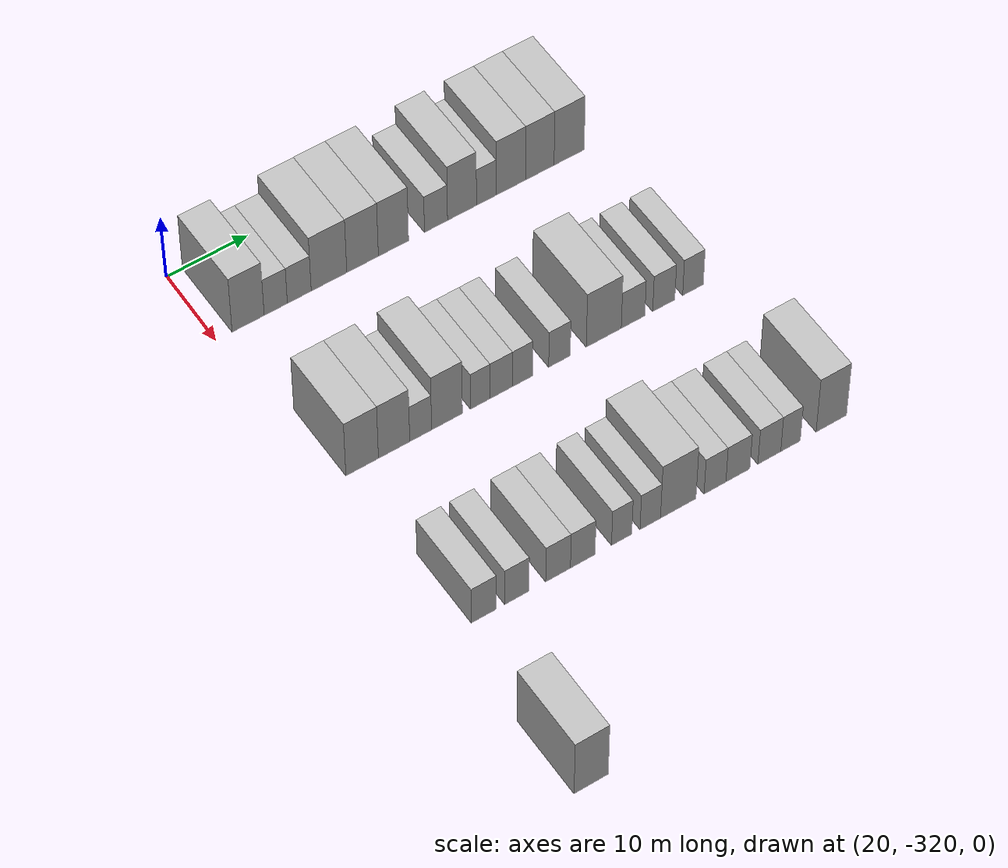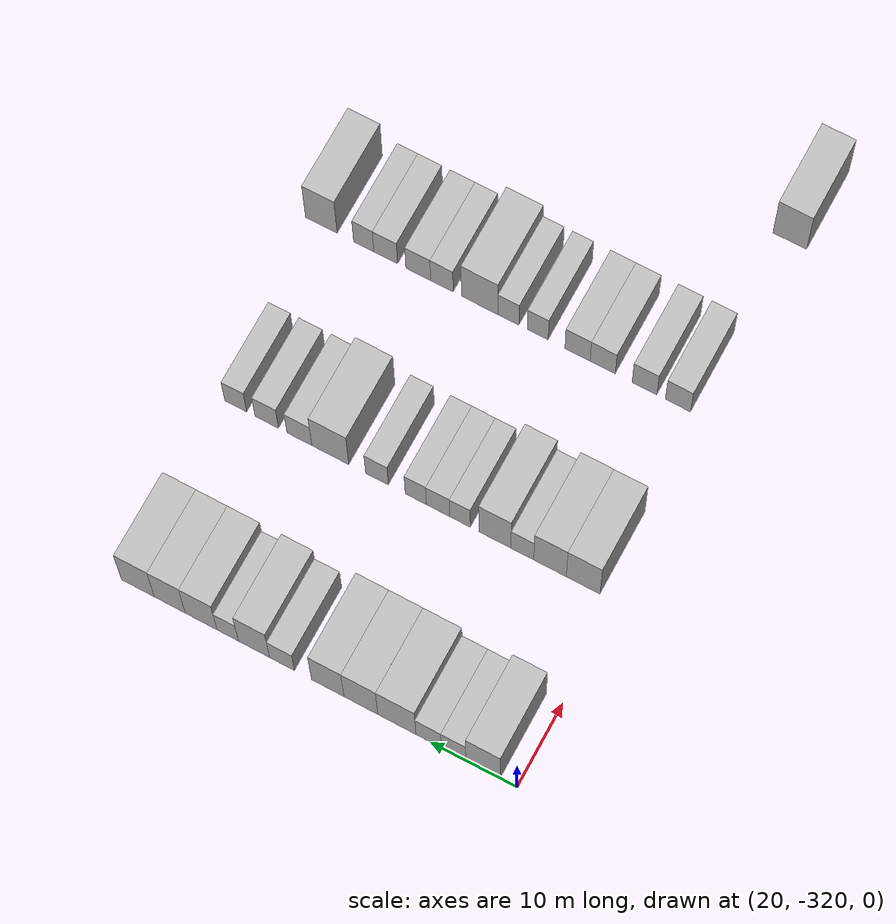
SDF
<sdf version="1.6">
 <world name="default">
  <model name="building_12">
   <static>1</static>
   <pose>25.0000 -316.0874 0 0.000000 0.000000 0.000000</pose>
   <link name="link">
    <pose>0 0 4.50 0 0 0</pose>
    <collision name="collision"><geometry><box><size>10.0000 3.9354 9.0000</size></box></geometry></collision>
    <visual name="visual">
     <cast_shadows>0</cast_shadows>
     <geometry><box><size>10.0000 3.9354 9.0000</size></box></geometry>
     <material>
      <script>
       <uri>model://HANNAS_wall/materials/scripts</uri>
       <uri>model://HANNAS_wall/materials/textures</uri>
       <name>vrc/HANNAS_wall</name>
      </script>
     </material>
    </visual>
   </link>
  </model>
  <model name="building_13">
   <static>1</static>
   <pose>25.0000 -312.6934 0 0.000000 0.000000 0.000000</pose>
   <link name="link">
    <pose>0 0 3.00 0 0 0</pose>
    <collision name="collision"><geometry><box><size>10.0000 2.8527 6.0000</size></box></geometry></collision>
    <visual name="visual">
     <cast_shadows>0</cast_shadows>
     <geometry><box><size>10.0000 2.8527 6.0000</size></box></geometry>
     <material>
      <script>
       <uri>model://HANNAS_wall/materials/scripts</uri>
       <uri>model://HANNAS_wall/materials/textures</uri>
       <name>vrc/HANNAS_wall</name>
      </script>
     </material>
    </visual>
   </link>
  </model>
  <model name="building_14">
   <static>1</static>
   <pose>25.0000 -309.7928 0 0.000000 0.000000 0.000000</pose>
   <link name="link">
    <pose>0 0 3.00 0 0 0</pose>
    <collision name="collision"><geometry><box><size>10.0000 2.9486 6.0000</size></box></geometry></collision>
    <visual name="visual">
     <cast_shadows>0</cast_shadows>
     <geometry><box><size>10.0000 2.9486 6.0000</size></box></geometry>
     <material>
      <script>
       <uri>model://HANNAS_wall/materials/scripts</uri>
       <uri>model://HANNAS_wall/materials/textures</uri>
       <name>vrc/HANNAS_wall</name>
      </script>
     </material>
    </visual>
   </link>
  </model>
  <model name="building_15">
   <static>1</static>
   <pose>25.0000 -306.1103 0 0.000000 0.000000 0.000000</pose>
   <link name="link">
    <pose>0 0 4.50 0 0 0</pose>
    <collision name="collision"><geometry><box><size>10.0000 4.4164 9.0000</size></box></geometry></collision>
    <visual name="visual">
     <cast_shadows>0</cast_shadows>
     <geometry><box><size>10.0000 4.4164 9.0000</size></box></geometry>
     <material>
      <script>
       <uri>model://HANNAS_wall/materials/scripts</uri>
       <uri>model://HANNAS_wall/materials/textures</uri>
       <name>vrc/HANNAS_wall</name>
      </script>
     </material>
    </visual>
   </link>
  </model>
  <model name="building_16">
   <static>1</static>
   <pose>25.0000 -301.9288 0 0.000000 0.000000 0.000000</pose>
   <link name="link">
    <pose>0 0 4.50 0 0 0</pose>
    <collision name="collision"><geometry><box><size>10.0000 3.9465 9.0000</size></box></geometry></collision>
    <visual name="visual">
     <cast_shadows>0</cast_shadows>
     <geometry><box><size>10.0000 3.9465 9.0000</size></box></geometry>
     <material>
      <script>
       <uri>model://HANNAS_wall/materials/scripts</uri>
       <uri>model://HANNAS_wall/materials/textures</uri>
       <name>vrc/HANNAS_wall</name>
      </script>
     </material>
    </visual>
   </link>
  </model>
  <model name="building_17">
   <static>1</static>
   <pose>25.0000 -298.0596 0 0.000000 0.000000 0.000000</pose>
   <link name="link">
    <pose>0 0 4.50 0 0 0</pose>
    <collision name="collision"><geometry><box><size>10.0000 3.7918 9.0000</size></box></geometry></collision>
    <visual name="visual">
     <cast_shadows>0</cast_shadows>
     <geometry><box><size>10.0000 3.7918 9.0000</size></box></geometry>
     <material>
      <script>
       <uri>model://HANNAS_wall/materials/scripts</uri>
       <uri>model://HANNAS_wall/materials/textures</uri>
       <name>vrc/HANNAS_wall</name>
      </script>
     </material>
    </visual>
   </link>
  </model>
  <model name="building_18">
   <static>1</static>
   <pose>25.0000 -292.7049 0 0.000000 0.000000 0.000000</pose>
   <link name="link">
    <pose>0 0 3.00 0 0 0</pose>
    <collision name="collision"><geometry><box><size>10.0000 2.9178 6.0000</size></box></geometry></collision>
    <visual name="visual">
     <cast_shadows>0</cast_shadows>
     <geometry><box><size>10.0000 2.9178 6.0000</size></box></geometry>
     <material>
      <script>
       <uri>model://HANNAS_wall/materials/scripts</uri>
       <uri>model://HANNAS_wall/materials/textures</uri>
       <name>vrc/HANNAS_wall</name>
      </script>
     </material>
    </visual>
   </link>
  </model>
  <model name="building_19">
   <static>1</static>
   <pose>25.0000 -289.4056 0 0.000000 0.000000 0.000000</pose>
   <link name="link">
    <pose>0 0 4.50 0 0 0</pose>
    <collision name="collision"><geometry><box><size>10.0000 3.6808 9.0000</size></box></geometry></collision>
    <visual name="visual">
     <cast_shadows>0</cast_shadows>
     <geometry><box><size>10.0000 3.6808 9.0000</size></box></geometry>
     <material>
      <script>
       <uri>model://HANNAS_wall/materials/scripts</uri>
       <uri>model://HANNAS_wall/materials/textures</uri>
       <name>vrc/HANNAS_wall</name>
      </script>
     </material>
    </visual>
   </link>
  </model>
  <model name="building_20">
   <static>1</static>
   <pose>25.0000 -286.3072 0 0.000000 0.000000 0.000000</pose>
   <link name="link">
    <pose>0 0 3.00 0 0 0</pose>
    <collision name="collision"><geometry><box><size>10.0000 2.5159 6.0000</size></box></geometry></collision>
    <visual name="visual">
     <cast_shadows>0</cast_shadows>
     <geometry><box><size>10.0000 2.5159 6.0000</size></box></geometry>
     <material>
      <script>
       <uri>model://HANNAS_wall/materials/scripts</uri>
       <uri>model://HANNAS_wall/materials/textures</uri>
       <name>vrc/HANNAS_wall</name>
      </script>
     </material>
    </visual>
   </link>
  </model>
  <model name="building_21">
   <static>1</static>
   <pose>25.0000 -283.1710 0 0.000000 0.000000 0.000000</pose>
   <link name="link">
    <pose>0 0 4.50 0 0 0</pose>
    <collision name="collision"><geometry><box><size>10.0000 3.7564 9.0000</size></box></geometry></collision>
    <visual name="visual">
     <cast_shadows>0</cast_shadows>
     <geometry><box><size>10.0000 3.7564 9.0000</size></box></geometry>
     <material>
      <script>
       <uri>model://HANNAS_wall/materials/scripts</uri>
       <uri>model://HANNAS_wall/materials/textures</uri>
       <name>vrc/HANNAS_wall</name>
      </script>
     </material>
    </visual>
   </link>
  </model>
  <model name="building_22">
   <static>1</static>
   <pose>25.0000 -279.4564 0 0.000000 0.000000 0.000000</pose>
   <link name="link">
    <pose>0 0 4.50 0 0 0</pose>
    <collision name="collision"><geometry><box><size>10.0000 3.6729 9.0000</size></box></geometry></collision>
    <visual name="visual">
     <cast_shadows>0</cast_shadows>
     <geometry><box><size>10.0000 3.6729 9.0000</size></box></geometry>
     <material>
      <script>
       <uri>model://HANNAS_wall/materials/scripts</uri>
       <uri>model://HANNAS_wall/materials/textures</uri>
       <name>vrc/HANNAS_wall</name>
      </script>
     </material>
    </visual>
   </link>
  </model>
  <model name="building_23">
   <static>1</static>
   <pose>25.0000 -275.6737 0 0.000000 0.000000 0.000000</pose>
   <link name="link">
    <pose>0 0 4.50 0 0 0</pose>
    <collision name="collision"><geometry><box><size>10.0000 3.8923 9.0000</size></box></geometry></collision>
    <visual name="visual">
     <cast_shadows>0</cast_shadows>
     <geometry><box><size>10.0000 3.8923 9.0000</size></box></geometry>
     <material>
      <script>
       <uri>model://HANNAS_wall/materials/scripts</uri>
       <uri>model://HANNAS_wall/materials/textures</uri>
       <name>vrc/HANNAS_wall</name>
      </script>
     </material>
    </visual>
   </link>
  </model>
  <model name="building_199">
   <static>1</static>
   <pose>47.0000 -315.9801 0 0.000000 0.000000 0.000000</pose>
   <link name="link">
    <pose>0 0 4.50 0 0 0</pose>
    <collision name="collision"><geometry><box><size>10.0000 3.9412 9.0000</size></box></geometry></collision>
    <visual name="visual">
     <cast_shadows>0</cast_shadows>
     <geometry><box><size>10.0000 3.9412 9.0000</size></box></geometry>
     <material>
      <script>
       <uri>model://HANNAS_wall/materials/scripts</uri>
       <uri>model://HANNAS_wall/materials/textures</uri>
       <name>vrc/HANNAS_wall</name>
      </script>
     </material>
    </visual>
   </link>
  </model>
  <model name="building_200">
   <static>1</static>
   <pose>47.0000 -312.1093 0 0.000000 0.000000 0.000000</pose>
   <link name="link">
    <pose>0 0 4.50 0 0 0</pose>
    <collision name="collision"><geometry><box><size>10.0000 3.8005 9.0000</size></box></geometry></collision>
    <visual name="visual">
     <cast_shadows>0</cast_shadows>
     <geometry><box><size>10.0000 3.8005 9.0000</size></box></geometry>
     <material>
      <script>
       <uri>model://HANNAS_wall/materials/scripts</uri>
       <uri>model://HANNAS_wall/materials/textures</uri>
       <name>vrc/HANNAS_wall</name>
      </script>
     </material>
    </visual>
   </link>
  </model>
  <model name="building_201">
   <static>1</static>
   <pose>47.0000 -308.8733 0 0.000000 0.000000 0.000000</pose>
   <link name="link">
    <pose>0 0 3.00 0 0 0</pose>
    <collision name="collision"><geometry><box><size>10.0000 2.6715 6.0000</size></box></geometry></collision>
    <visual name="visual">
     <cast_shadows>0</cast_shadows>
     <geometry><box><size>10.0000 2.6715 6.0000</size></box></geometry>
     <material>
      <script>
       <uri>model://HANNAS_wall/materials/scripts</uri>
       <uri>model://HANNAS_wall/materials/textures</uri>
       <name>vrc/HANNAS_wall</name>
      </script>
     </material>
    </visual>
   </link>
  </model>
  <model name="building_202">
   <static>1</static>
   <pose>47.0000 -305.6517 0 0.000000 0.000000 0.000000</pose>
   <link name="link">
    <pose>0 0 4.50 0 0 0</pose>
    <collision name="collision"><geometry><box><size>10.0000 3.7718 9.0000</size></box></geometry></collision>
    <visual name="visual">
     <cast_shadows>0</cast_shadows>
     <geometry><box><size>10.0000 3.7718 9.0000</size></box></geometry>
     <material>
      <script>
       <uri>model://HANNAS_wall/materials/scripts</uri>
       <uri>model://HANNAS_wall/materials/textures</uri>
       <name>vrc/HANNAS_wall</name>
      </script>
     </material>
    </visual>
   </link>
  </model>
  <model name="building_203">
   <static>1</static>
   <pose>47.0000 -301.5495 0 0.000000 0.000000 0.000000</pose>
   <link name="link">
    <pose>0 0 3.00 0 0 0</pose>
    <collision name="collision"><geometry><box><size>10.0000 2.4326 6.0000</size></box></geometry></collision>
    <visual name="visual">
     <cast_shadows>0</cast_shadows>
     <geometry><box><size>10.0000 2.4326 6.0000</size></box></geometry>
     <material>
      <script>
       <uri>model://HANNAS_wall/materials/scripts</uri>
       <uri>model://HANNAS_wall/materials/textures</uri>
       <name>vrc/HANNAS_wall</name>
      </script>
     </material>
    </visual>
   </link>
  </model>
  <model name="building_204">
   <static>1</static>
   <pose>47.0000 -298.9523 0 0.000000 0.000000 0.000000</pose>
   <link name="link">
    <pose>0 0 3.00 0 0 0</pose>
    <collision name="collision"><geometry><box><size>10.0000 2.7617 6.0000</size></box></geometry></collision>
    <visual name="visual">
     <cast_shadows>0</cast_shadows>
     <geometry><box><size>10.0000 2.7617 6.0000</size></box></geometry>
     <material>
      <script>
       <uri>model://HANNAS_wall/materials/scripts</uri>
       <uri>model://HANNAS_wall/materials/textures</uri>
       <name>vrc/HANNAS_wall</name>
      </script>
     </material>
    </visual>
   </link>
  </model>
  <model name="building_205">
   <static>1</static>
   <pose>47.0000 -296.3221 0 0.000000 0.000000 0.000000</pose>
   <link name="link">
    <pose>0 0 3.00 0 0 0</pose>
    <collision name="collision"><geometry><box><size>10.0000 2.4988 6.0000</size></box></geometry></collision>
    <visual name="visual">
     <cast_shadows>0</cast_shadows>
     <geometry><box><size>10.0000 2.4988 6.0000</size></box></geometry>
     <material>
      <script>
       <uri>model://HANNAS_wall/materials/scripts</uri>
       <uri>model://HANNAS_wall/materials/textures</uri>
       <name>vrc/HANNAS_wall</name>
      </script>
     </material>
    </visual>
   </link>
  </model>
  <model name="building_206">
   <static>1</static>
   <pose>47.0000 -291.7215 0 0.000000 0.000000 0.000000</pose>
   <link name="link">
    <pose>0 0 3.00 0 0 0</pose>
    <collision name="collision"><geometry><box><size>10.0000 2.7024 6.0000</size></box></geometry></collision>
    <visual name="visual">
     <cast_shadows>0</cast_shadows>
     <geometry><box><size>10.0000 2.7024 6.0000</size></box></geometry>
     <material>
      <script>
       <uri>model://HANNAS_wall/materials/scripts</uri>
       <uri>model://HANNAS_wall/materials/textures</uri>
       <name>vrc/HANNAS_wall</name>
      </script>
     </material>
    </visual>
   </link>
  </model>
  <model name="building_207">
   <static>1</static>
   <pose>47.0000 -286.1635 0 0.000000 0.000000 0.000000</pose>
   <link name="link">
    <pose>0 0 4.50 0 0 0</pose>
    <collision name="collision"><geometry><box><size>10.0000 4.4135 9.0000</size></box></geometry></collision>
    <visual name="visual">
     <cast_shadows>0</cast_shadows>
     <geometry><box><size>10.0000 4.4135 9.0000</size></box></geometry>
     <material>
      <script>
       <uri>model://HANNAS_wall/materials/scripts</uri>
       <uri>model://HANNAS_wall/materials/textures</uri>
       <name>vrc/HANNAS_wall</name>
      </script>
     </material>
    </visual>
   </link>
  </model>
  <model name="building_208">
   <static>1</static>
   <pose>47.0000 -282.4631 0 0.000000 0.000000 0.000000</pose>
   <link name="link">
    <pose>0 0 3.00 0 0 0</pose>
    <collision name="collision"><geometry><box><size>10.0000 2.9874 6.0000</size></box></geometry></collision>
    <visual name="visual">
     <cast_shadows>0</cast_shadows>
     <geometry><box><size>10.0000 2.9874 6.0000</size></box></geometry>
     <material>
      <script>
       <uri>model://HANNAS_wall/materials/scripts</uri>
       <uri>model://HANNAS_wall/materials/textures</uri>
       <name>vrc/HANNAS_wall</name>
      </script>
     </material>
    </visual>
   </link>
  </model>
  <model name="building_209">
   <static>1</static>
   <pose>47.0000 -278.5616 0 0.000000 0.000000 0.000000</pose>
   <link name="link">
    <pose>0 0 3.00 0 0 0</pose>
    <collision name="collision"><geometry><box><size>10.0000 2.8155 6.0000</size></box></geometry></collision>
    <visual name="visual">
     <cast_shadows>0</cast_shadows>
     <geometry><box><size>10.0000 2.8155 6.0000</size></box></geometry>
     <material>
      <script>
       <uri>model://HANNAS_wall/materials/scripts</uri>
       <uri>model://HANNAS_wall/materials/textures</uri>
       <name>vrc/HANNAS_wall</name>
      </script>
     </material>
    </visual>
   </link>
  </model>
  <model name="building_210">
   <static>1</static>
   <pose>47.0000 -274.8339 0 0.000000 0.000000 0.000000</pose>
   <link name="link">
    <pose>0 0 3.00 0 0 0</pose>
    <collision name="collision"><geometry><box><size>10.0000 2.6399 6.0000</size></box></geometry></collision>
    <visual name="visual">
     <cast_shadows>0</cast_shadows>
     <geometry><box><size>10.0000 2.6399 6.0000</size></box></geometry>
     <material>
      <script>
       <uri>model://HANNAS_wall/materials/scripts</uri>
       <uri>model://HANNAS_wall/materials/textures</uri>
       <name>vrc/HANNAS_wall</name>
      </script>
     </material>
    </visual>
   </link>
  </model>
  <model name="building_383">
   <static>1</static>
   <pose>69.0000 -315.6085 0 0.000000 0.000000 0.000000</pose>
   <link name="link">
    <pose>0 0 3.00 0 0 0</pose>
    <collision name="collision"><geometry><box><size>10.0000 2.9805 6.0000</size></box></geometry></collision>
    <visual name="visual">
     <cast_shadows>0</cast_shadows>
     <geometry><box><size>10.0000 2.9805 6.0000</size></box></geometry>
     <material>
      <script>
       <uri>model://HANNAS_wall/materials/scripts</uri>
       <uri>model://HANNAS_wall/materials/textures</uri>
       <name>vrc/HANNAS_wall</name>
      </script>
     </material>
    </visual>
   </link>
  </model>
  <model name="building_384">
   <static>1</static>
   <pose>69.0000 -311.6565 0 0.000000 0.000000 0.000000</pose>
   <link name="link">
    <pose>0 0 3.00 0 0 0</pose>
    <collision name="collision"><geometry><box><size>10.0000 2.9236 6.0000</size></box></geometry></collision>
    <visual name="visual">
     <cast_shadows>0</cast_shadows>
     <geometry><box><size>10.0000 2.9236 6.0000</size></box></geometry>
     <material>
      <script>
       <uri>model://HANNAS_wall/materials/scripts</uri>
       <uri>model://HANNAS_wall/materials/textures</uri>
       <name>vrc/HANNAS_wall</name>
      </script>
     </material>
    </visual>
   </link>
  </model>
  <model name="building_385">
   <static>1</static>
   <pose>69.0000 -306.6961 0 0.000000 0.000000 0.000000</pose>
   <link name="link">
    <pose>0 0 3.00 0 0 0</pose>
    <collision name="collision"><geometry><box><size>10.0000 2.9971 6.0000</size></box></geometry></collision>
    <visual name="visual">
     <cast_shadows>0</cast_shadows>
     <geometry><box><size>10.0000 2.9971 6.0000</size></box></geometry>
     <material>
      <script>
       <uri>model://HANNAS_wall/materials/scripts</uri>
       <uri>model://HANNAS_wall/materials/textures</uri>
       <name>vrc/HANNAS_wall</name>
      </script>
     </material>
    </visual>
   </link>
  </model>
  <model name="building_386">
   <static>1</static>
   <pose>69.0000 -303.7032 0 0.000000 0.000000 0.000000</pose>
   <link name="link">
    <pose>0 0 3.00 0 0 0</pose>
    <collision name="collision"><geometry><box><size>10.0000 2.9887 6.0000</size></box></geometry></collision>
    <visual name="visual">
     <cast_shadows>0</cast_shadows>
     <geometry><box><size>10.0000 2.9887 6.0000</size></box></geometry>
     <material>
      <script>
       <uri>model://HANNAS_wall/materials/scripts</uri>
       <uri>model://HANNAS_wall/materials/textures</uri>
       <name>vrc/HANNAS_wall</name>
      </script>
     </material>
    </visual>
   </link>
  </model>
  <model name="building_387">
   <static>1</static>
   <pose>69.0000 -298.9659 0 0.000000 0.000000 0.000000</pose>
   <link name="link">
    <pose>0 0 3.00 0 0 0</pose>
    <collision name="collision"><geometry><box><size>10.0000 2.4860 6.0000</size></box></geometry></collision>
    <visual name="visual">
     <cast_shadows>0</cast_shadows>
     <geometry><box><size>10.0000 2.4860 6.0000</size></box></geometry>
     <material>
      <script>
       <uri>model://HANNAS_wall/materials/scripts</uri>
       <uri>model://HANNAS_wall/materials/textures</uri>
       <name>vrc/HANNAS_wall</name>
      </script>
     </material>
    </visual>
   </link>
  </model>
  <model name="building_388">
   <static>1</static>
   <pose>69.0000 -295.4655 0 0.000000 0.000000 0.000000</pose>
   <link name="link">
    <pose>0 0 3.00 0 0 0</pose>
    <collision name="collision"><geometry><box><size>10.0000 2.5148 6.0000</size></box></geometry></collision>
    <visual name="visual">
     <cast_shadows>0</cast_shadows>
     <geometry><box><size>10.0000 2.5148 6.0000</size></box></geometry>
     <material>
      <script>
       <uri>model://HANNAS_wall/materials/scripts</uri>
       <uri>model://HANNAS_wall/materials/textures</uri>
       <name>vrc/HANNAS_wall</name>
      </script>
     </material>
    </visual>
   </link>
  </model>
  <model name="building_389">
   <static>1</static>
   <pose>69.0000 -292.0192 0 0.000000 0.000000 0.000000</pose>
   <link name="link">
    <pose>0 0 4.50 0 0 0</pose>
    <collision name="collision"><geometry><box><size>10.0000 4.3778 9.0000</size></box></geometry></collision>
    <visual name="visual">
     <cast_shadows>0</cast_shadows>
     <geometry><box><size>10.0000 4.3778 9.0000</size></box></geometry>
     <material>
      <script>
       <uri>model://HANNAS_wall/materials/scripts</uri>
       <uri>model://HANNAS_wall/materials/textures</uri>
       <name>vrc/HANNAS_wall</name>
      </script>
     </material>
    </visual>
   </link>
  </model>
  <model name="building_390">
   <static>1</static>
   <pose>69.0000 -287.4700 0 0.000000 0.000000 0.000000</pose>
   <link name="link">
    <pose>0 0 3.00 0 0 0</pose>
    <collision name="collision"><geometry><box><size>10.0000 2.7206 6.0000</size></box></geometry></collision>
    <visual name="visual">
     <cast_shadows>0</cast_shadows>
     <geometry><box><size>10.0000 2.7206 6.0000</size></box></geometry>
     <material>
      <script>
       <uri>model://HANNAS_wall/materials/scripts</uri>
       <uri>model://HANNAS_wall/materials/textures</uri>
       <name>vrc/HANNAS_wall</name>
      </script>
     </material>
    </visual>
   </link>
  </model>
  <model name="building_391">
   <static>1</static>
   <pose>69.0000 -284.6173 0 0.000000 0.000000 0.000000</pose>
   <link name="link">
    <pose>0 0 3.00 0 0 0</pose>
    <collision name="collision"><geometry><box><size>10.0000 2.9847 6.0000</size></box></geometry></collision>
    <visual name="visual">
     <cast_shadows>0</cast_shadows>
     <geometry><box><size>10.0000 2.9847 6.0000</size></box></geometry>
     <material>
      <script>
       <uri>model://HANNAS_wall/materials/scripts</uri>
       <uri>model://HANNAS_wall/materials/textures</uri>
       <name>vrc/HANNAS_wall</name>
      </script>
     </material>
    </visual>
   </link>
  </model>
  <model name="building_392">
   <static>1</static>
   <pose>69.0000 -280.6895 0 0.000000 0.000000 0.000000</pose>
   <link name="link">
    <pose>0 0 3.00 0 0 0</pose>
    <collision name="collision"><geometry><box><size>10.0000 2.8710 6.0000</size></box></geometry></collision>
    <visual name="visual">
     <cast_shadows>0</cast_shadows>
     <geometry><box><size>10.0000 2.8710 6.0000</size></box></geometry>
     <material>
      <script>
       <uri>model://HANNAS_wall/materials/scripts</uri>
       <uri>model://HANNAS_wall/materials/textures</uri>
       <name>vrc/HANNAS_wall</name>
      </script>
     </material>
    </visual>
   </link>
  </model>
  <model name="building_393">
   <static>1</static>
   <pose>69.0000 -278.0255 0 0.000000 0.000000 0.000000</pose>
   <link name="link">
    <pose>0 0 3.00 0 0 0</pose>
    <collision name="collision"><geometry><box><size>10.0000 2.4571 6.0000</size></box></geometry></collision>
    <visual name="visual">
     <cast_shadows>0</cast_shadows>
     <geometry><box><size>10.0000 2.4571 6.0000</size></box></geometry>
     <material>
      <script>
       <uri>model://HANNAS_wall/materials/scripts</uri>
       <uri>model://HANNAS_wall/materials/textures</uri>
       <name>vrc/HANNAS_wall</name>
      </script>
     </material>
    </visual>
   </link>
  </model>
  <model name="building_394">
   <static>1</static>
   <pose>69.0000 -272.8722 0 0.000000 0.000000 0.000000</pose>
   <link name="link">
    <pose>0 0 4.50 0 0 0</pose>
    <collision name="collision"><geometry><box><size>10.0000 3.8494 9.0000</size></box></geometry></collision>
    <visual name="visual">
     <cast_shadows>0</cast_shadows>
     <geometry><box><size>10.0000 3.8494 9.0000</size></box></geometry>
     <material>
      <script>
       <uri>model://HANNAS_wall/materials/scripts</uri>
       <uri>model://HANNAS_wall/materials/textures</uri>
       <name>vrc/HANNAS_wall</name>
      </script>
     </material>
    </visual>
   </link>
  </model>
  <model name="building_570">
   <static>1</static>
   <pose>91.0000 -317.6232 0 0.000000 0.000000 0.000000</pose>
   <link name="link">
    <pose>0 0 4.50 0 0 0</pose>
    <collision name="collision"><geometry><box><size>10.0000 4.0103 9.0000</size></box></geometry></collision>
    <visual name="visual">
     <cast_shadows>0</cast_shadows>
     <geometry><box><size>10.0000 4.0103 9.0000</size></box></geometry>
     <material>
      <script>
       <uri>model://HANNAS_wall/materials/scripts</uri>
       <uri>model://HANNAS_wall/materials/textures</uri>
       <name>vrc/HANNAS_wall</name>
      </script>
     </material>
    </visual>
   </link>
  </model>
 </world>
</sdf>
